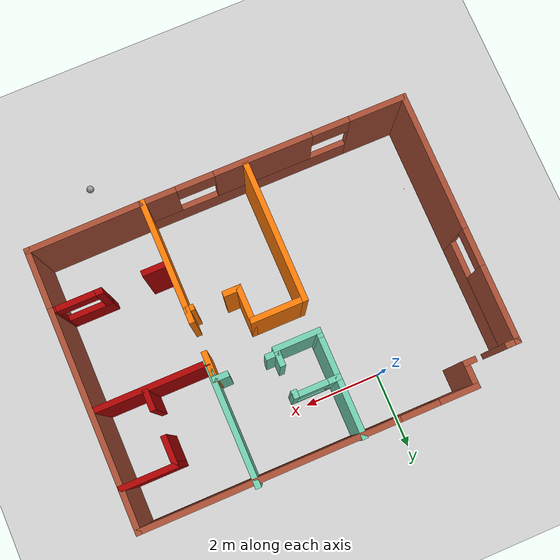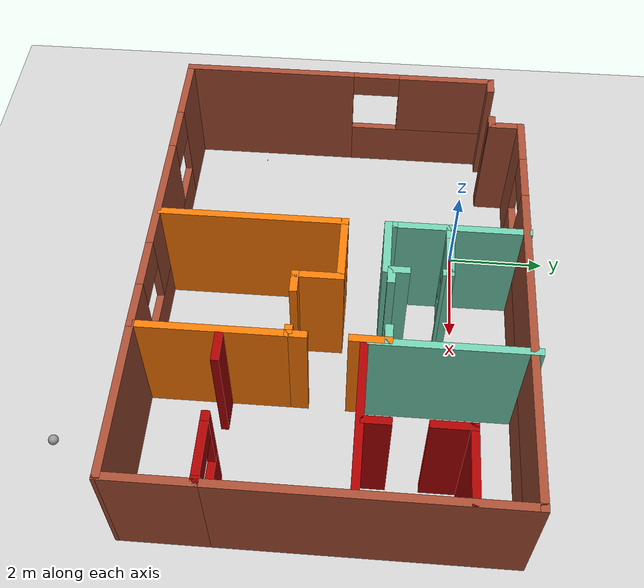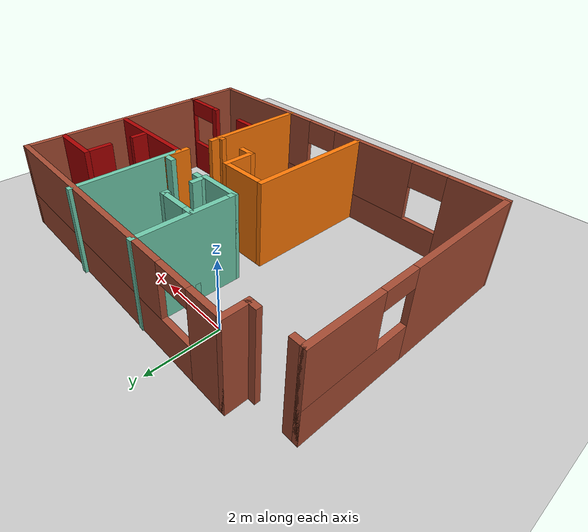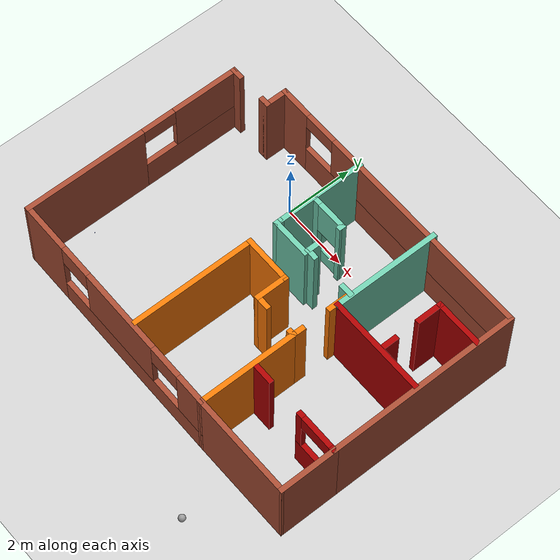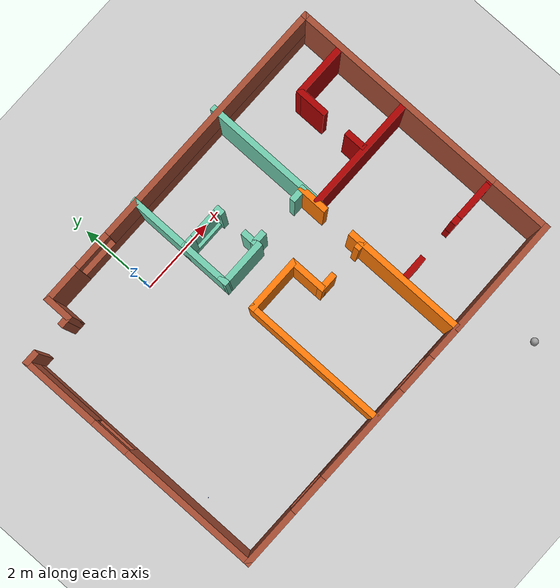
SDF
<sdf version="1.6">
 <world name="default">
  <plugin name="welcome_message" filename="libwelcome_message.so"/>
  <light name="sun" type="directional">
   <pose>0 0 10 0 -0 0</pose>
   <diffuse>0.8 0.8 0.8 1</diffuse>
   <specular>0.2 0.2 0.2 1</specular>
   <attenuation>
    <range>1000</range>
    <constant>0.9</constant>
    <linear>0.01</linear>
    <quadratic>0.001</quadratic>
   </attenuation>
   <direction>-0.5 0.1 -0.9</direction>
  </light>
  <model name="ground_plane">
   <static>1</static>
   <link name="link">
    <collision name="collision">
     <geometry><plane><normal>0 0 1</normal><size>100 100</size></plane></geometry>
     <surface><friction><ode><mu>100</mu><mu2>50</mu2></ode></friction></surface>
    </collision>
    <visual name="visual">
     <cast_shadows>0</cast_shadows>
     <geometry><plane><normal>0 0 1</normal><size>100 100</size></plane></geometry>
     <material>
      <script><uri>file://media/materials/scripts/gazebo.material</uri><name>Gazebo/Grey</name></script>
     </material>
    </visual>
   </link>
  </model>
  <gravity>0 0 -9.8</gravity>
  <magnetic_field>6e-06 2.3e-05 -4.2e-05</magnetic_field>
  <atmosphere type="adiabatic"/>
  <physics name="default_physics" default="0" type="ode">
   <max_step_size>0.001</max_step_size>
   <real_time_factor>1</real_time_factor>
   <real_time_update_rate>1000</real_time_update_rate>
  </physics>
  <scene><ambient>0.4 0.4 0.4 1</ambient><background>0.7 0.7 0.7 1</background><shadows>1</shadows></scene>
  <spherical_coordinates>
   <surface_model>EARTH_WGS84</surface_model>
   <latitude_deg>0</latitude_deg>
   <longitude_deg>0</longitude_deg>
   <elevation>0</elevation>
   <heading_deg>0</heading_deg>
  </spherical_coordinates>
  <model name="Building">
   <pose>1.9017 -2.33053 0 0 -0 0</pose>
   <link name="Wall_0">
    <pose>-4.30016 2.9635 0 0 -0 0</pose>
    <visual name="Wall_0_Visual_0">
     <pose>-0.550505 0 1.25 0 -0 0</pose>
     <geometry><box><size>0.39899 0.15 2.5</size></box></geometry>
     <material>
      <script><uri>file://media/materials/scripts/gazebo.material</uri><name>Gazebo/Bricks</name></script>
      <ambient>0.666667 0 0 1</ambient>
     </material>
     <meta><layer>0</layer></meta>
    </visual>
    <collision name="Wall_0_Collision_0">
     <geometry><box><size>0.39899 0.15 2.5</size></box></geometry>
     <pose>-0.550505 0 1.25 0 -0 0</pose>
    </collision>
    <visual name="Wall_0_Visual_1">
     <pose>0.581495 0 1.25 0 -0 0</pose>
     <geometry><box><size>0.33701 0.15 2.5</size></box></geometry>
     <material>
      <script><uri>file://media/materials/scripts/gazebo.material</uri><name>Gazebo/Bricks</name></script>
      <ambient>0.666667 0 0 1</ambient>
     </material>
     <meta><layer>0</layer></meta>
    </visual>
    <collision name="Wall_0_Collision_1">
     <geometry><box><size>0.33701 0.15 2.5</size></box></geometry>
     <pose>0.581495 0 1.25 0 -0 0</pose>
    </collision>
   </link>
   <link name="Wall_1">
    <collision name="Wall_1_Collision">
     <geometry><box><size>0.75 0.15 2.5</size></box></geometry>
     <pose>0 0 1.25 0 -0 0</pose>
    </collision>
    <visual name="Wall_1_Visual">
     <pose>0 0 1.25 0 -0 0</pose>
     <geometry><box><size>0.75 0.15 2.5</size></box></geometry>
     <material>
      <script><uri>file://media/materials/scripts/gazebo.material</uri><name>Gazebo/Bricks</name></script>
      <ambient>0.666667 0 0 1</ambient>
     </material>
     <meta><layer>0</layer></meta>
    </visual>
    <pose>-3.62515 3.2635 0 0 -0 1.5708</pose>
   </link>
   <link name="Wall_11">
    <pose>0.391864 1.53887 0 0 -0 1.5708</pose>
    <visual name="Wall_11_Visual_0">
     <pose>-0.412394 0 1.25 0 -0 0</pose>
     <geometry><box><size>0.425213 0.15 2.5</size></box></geometry>
     <material>
      <script><uri>file://media/materials/scripts/gazebo.material</uri><name>Gazebo/Grey</name></script>
      <ambient>0.435294 0.796078 0.67451 1</ambient>
     </material>
     <meta><layer>0</layer></meta>
    </visual>
    <collision name="Wall_11_Collision_0">
     <geometry><box><size>0.425213 0.15 2.5</size></box></geometry>
     <pose>-0.412394 0 1.25 0 -0 0</pose>
    </collision>
    <visual name="Wall_11_Visual_1">
     <pose>0.515606 0 1.25 0 -0 0</pose>
     <geometry><box><size>0.218787 0.15 2.5</size></box></geometry>
     <material>
      <script><uri>file://media/materials/scripts/gazebo.material</uri><name>Gazebo/Grey</name></script>
      <ambient>0.435294 0.796078 0.67451 1</ambient>
     </material>
     <meta><layer>0</layer></meta>
    </visual>
    <collision name="Wall_11_Collision_1">
     <geometry><box><size>0.218787 0.15 2.5</size></box></geometry>
     <pose>0.515606 0 1.25 0 -0 0</pose>
    </collision>
   </link>
   <link name="Wall_12">
    <pose>-0.158136 2.08887 0 0 -0 3.14159</pose>
    <visual name="Wall_12_Visual_0">
     <pose>-0.568138 0 1.25 0 -0 0</pose>
     <geometry><box><size>0.113724 0.15 2.5</size></box></geometry>
     <material>
      <script><uri>file://media/materials/scripts/gazebo.material</uri><name>Gazebo/Grey</name></script>
      <ambient>0.435294 0.796078 0.67451 1</ambient>
     </material>
     <meta><layer>0</layer></meta>
    </visual>
    <collision name="Wall_12_Collision_0">
     <geometry><box><size>0.113724 0.15 2.5</size></box></geometry>
     <pose>-0.568138 0 1.25 0 -0 0</pose>
    </collision>
    <visual name="Wall_12_Visual_1">
     <pose>0.056862 0 0.25 0 -0 0</pose>
     <geometry><box><size>1.13628 0.15 0.5</size></box></geometry>
     <material>
      <script><uri>file://media/materials/scripts/gazebo.material</uri><name>Gazebo/Grey</name></script>
      <ambient>0.435294 0.796078 0.67451 1</ambient>
     </material>
     <meta><layer>0</layer></meta>
    </visual>
    <collision name="Wall_12_Collision_1">
     <geometry><box><size>1.13628 0.15 0.5</size></box></geometry>
     <pose>0.056862 0 0.25 0 -0 0</pose>
    </collision>
    <visual name="Wall_12_Visual_2">
     <pose>0.456862 0 1.5 0 -0 0</pose>
     <geometry><box><size>0.336276 0.15 2</size></box></geometry>
     <material>
      <script><uri>file://media/materials/scripts/gazebo.material</uri><name>Gazebo/Grey</name></script>
      <ambient>0.435294 0.796078 0.67451 1</ambient>
     </material>
     <meta><layer>0</layer></meta>
    </visual>
    <collision name="Wall_12_Collision_2">
     <geometry><box><size>0.336276 0.15 2</size></box></geometry>
     <pose>0.456862 0 1.5 0 -0 0</pose>
    </collision>
    <visual name="Wall_12_Visual_3">
     <pose>-0.111276 0 1.9 0 -0 0</pose>
     <geometry><box><size>0.8 0.15 1.2</size></box></geometry>
     <material>
      <script><uri>file://media/materials/scripts/gazebo.material</uri><name>Gazebo/Grey</name></script>
      <ambient>0.435294 0.796078 0.67451 1</ambient>
     </material>
     <meta><layer>0</layer></meta>
    </visual>
    <collision name="Wall_12_Collision_3">
     <geometry><box><size>0.8 0.15 1.2</size></box></geometry>
     <pose>-0.111276 0 1.9 0 -0 0</pose>
    </collision>
   </link>
   <link name="Wall_16">
    <pose>1.19186 0.988869 0 0 -0 0</pose>
    <visual name="Wall_16_Visual_0">
     <pose>-0.680281 0 1.25 0 -0 0</pose>
     <geometry><box><size>0.389438 0.15 2.5</size></box></geometry>
     <material>
      <script><uri>file://media/materials/scripts/gazebo.material</uri><name>Gazebo/Grey</name></script>
      <ambient>0.435294 0.796078 0.67451 1</ambient>
     </material>
     <meta><layer>0</layer></meta>
    </visual>
    <collision name="Wall_16_Collision_0">
     <geometry><box><size>0.389438 0.15 2.5</size></box></geometry>
     <pose>-0.680281 0 1.25 0 -0 0</pose>
    </collision>
    <visual name="Wall_16_Visual_1">
     <pose>0.663744 0 1.25 0 -0 0</pose>
     <geometry><box><size>0.422512 0.15 2.5</size></box></geometry>
     <material>
      <script><uri>file://media/materials/scripts/gazebo.material</uri><name>Gazebo/Grey</name></script>
      <ambient>0.435294 0.796078 0.67451 1</ambient>
     </material>
     <meta><layer>0</layer></meta>
    </visual>
    <collision name="Wall_16_Collision_1">
     <geometry><box><size>0.422512 0.15 2.5</size></box></geometry>
     <pose>0.663744 0 1.25 0 -0 0</pose>
    </collision>
   </link>
   <link name="Wall_18">
    <collision name="Wall_18_Collision">
     <geometry><box><size>0.25 0.15 2.5</size></box></geometry>
     <pose>0 0 1.25 0 -0 0</pose>
    </collision>
    <visual name="Wall_18_Visual">
     <pose>0 0 1.25 0 -0 0</pose>
     <geometry><box><size>0.25 0.15 2.5</size></box></geometry>
     <material>
      <script><uri>file://media/materials/scripts/gazebo.material</uri><name>Gazebo/Grey</name></script>
      <ambient>0.435294 0.796078 0.67451 1</ambient>
     </material>
     <meta><layer>0</layer></meta>
    </visual>
    <pose>-0.708136 0.938869 0 0 0 -1.5708</pose>
   </link>
   <link name="Wall_19">
    <collision name="Wall_19_Collision">
     <geometry><box><size>1.25 0.15 2.5</size></box></geometry>
     <pose>0 0 1.25 0 -0 0</pose>
    </collision>
    <visual name="Wall_19_Visual">
     <pose>0 0 1.25 0 -0 0</pose>
     <geometry><box><size>1.25 0.15 2.5</size></box></geometry>
     <material>
      <script><uri>file://media/materials/scripts/gazebo.material</uri><name>Gazebo/Grey</name></script>
      <ambient>0.435294 0.796078 0.67451 1</ambient>
     </material>
     <meta><layer>0</layer></meta>
    </visual>
    <pose>-0.158136 0.888869 0 0 -0 0</pose>
   </link>
   <link name="Wall_2">
    <pose>0.674845 3.5635 0 0 -0 0</pose>
    <visual name="Wall_2_Visual_0">
     <pose>-3.86007 0 1.25 0 -0 0</pose>
     <geometry><box><size>1.02985 0.15 2.5</size></box></geometry>
     <material>
      <script><uri>file://media/materials/scripts/gazebo.material</uri><name>Gazebo/Bricks</name></script>
      <ambient>0.666667 0 0 1</ambient>
     </material>
     <meta><layer>0</layer></meta>
    </visual>
    <collision name="Wall_2_Collision_0">
     <geometry><box><size>1.02985 0.15 2.5</size></box></geometry>
     <pose>-3.86007 0 1.25 0 -0 0</pose>
    </collision>
    <visual name="Wall_2_Visual_1">
     <pose>0.514926 0 0.5 0 -0 0</pose>
     <geometry><box><size>7.72015 0.15 1</size></box></geometry>
     <material>
      <script><uri>file://media/materials/scripts/gazebo.material</uri><name>Gazebo/Bricks</name></script>
      <ambient>0.666667 0 0 1</ambient>
     </material>
     <meta><layer>0</layer></meta>
    </visual>
    <collision name="Wall_2_Collision_1">
     <geometry><box><size>7.72015 0.15 1</size></box></geometry>
     <pose>0.514926 0 0.5 0 -0 0</pose>
    </collision>
    <visual name="Wall_2_Visual_2">
     <pose>1.01493 0 1.75 0 -0 0</pose>
     <geometry><box><size>6.72015 0.15 1.5</size></box></geometry>
     <material>
      <script><uri>file://media/materials/scripts/gazebo.material</uri><name>Gazebo/Bricks</name></script>
      <ambient>0.666667 0 0 1</ambient>
     </material>
     <meta><layer>0</layer></meta>
    </visual>
    <collision name="Wall_2_Collision_2">
     <geometry><box><size>6.72015 0.15 1.5</size></box></geometry>
     <pose>1.01493 0 1.75 0 -0 0</pose>
    </collision>
    <visual name="Wall_2_Visual_3">
     <pose>-2.84515 0 2.25 0 -0 0</pose>
     <geometry><box><size>1 0.15 0.5</size></box></geometry>
     <material>
      <script><uri>file://media/materials/scripts/gazebo.material</uri><name>Gazebo/Bricks</name></script>
      <ambient>0.666667 0 0 1</ambient>
     </material>
     <meta><layer>0</layer></meta>
    </visual>
    <collision name="Wall_2_Collision_3">
     <geometry><box><size>1 0.15 0.5</size></box></geometry>
     <pose>-2.84515 0 2.25 0 -0 0</pose>
    </collision>
   </link>
   <link name="Wall_3">
    <collision name="Wall_3_Collision">
     <geometry><box><size>5.75 0.15 2.5</size></box></geometry>
     <pose>0 0 1.25 0 -0 0</pose>
    </collision>
    <visual name="Wall_3_Visual">
     <pose>0 0 1.25 0 -0 0</pose>
     <geometry><box><size>5.75 0.15 2.5</size></box></geometry>
     <material>
      <script><uri>file://media/materials/scripts/gazebo.material</uri><name>Gazebo/Bricks</name></script>
      <ambient>0.666667 0 0 1</ambient>
     </material>
     <meta><layer>0</layer></meta>
    </visual>
    <pose>4.97485 0.7635 0 0 0 -1.5708</pose>
   </link>
   <link name="Wall_37">
    <collision name="Wall_37_Collision">
     <geometry><box><size>3.25 0.15 2.5</size></box></geometry>
     <pose>0 0 1.25 0 -0 0</pose>
    </collision>
    <visual name="Wall_37_Visual">
     <pose>0 0 1.25 0 -0 0</pose>
     <geometry><box><size>3.25 0.15 2.5</size></box></geometry>
     <material>
      <script><uri>file://media/materials/scripts/gazebo.material</uri><name>Gazebo/Grey</name></script>
      <ambient>0.435294 0.796078 0.67451 1</ambient>
     </material>
     <meta><layer>0</layer></meta>
    </visual>
    <pose>2.03032 2.10888 0 0 0 -1.5708</pose>
   </link>
   <link name="Wall_39">
    <collision name="Wall_39_Collision">
     <geometry><box><size>3.75 0.15 2.5</size></box></geometry>
     <pose>0 0 1.25 0 -0 0</pose>
    </collision>
    <visual name="Wall_39_Visual">
     <pose>0 0 1.25 0 -0 0</pose>
     <geometry><box><size>3.75 0.15 2.5</size></box></geometry>
     <material>
      <script><uri>file://media/materials/scripts/gazebo.material</uri><name>Gazebo/Grey</name></script>
      <ambient>0.996078 0.47451 0.0196078 1</ambient>
     </material>
     <meta><layer>0</layer></meta>
    </visual>
    <pose>-0.719298 -1.75833 0 0 -0 1.5708</pose>
   </link>
   <link name="Wall_4">
    <pose>3.54984 -2.0365 0 0 -0 3.14159</pose>
    <visual name="Wall_4_Visual_0">
     <pose>-1.40037 0 1.25 0 -0 0</pose>
     <geometry><box><size>0.199251 0.15 2.5</size></box></geometry>
     <material>
      <script><uri>file://media/materials/scripts/gazebo.material</uri><name>Gazebo/Grey</name></script>
      <ambient>0.666667 0 0 1</ambient>
     </material>
     <meta><layer>0</layer></meta>
    </visual>
    <collision name="Wall_4_Collision_0">
     <geometry><box><size>0.199251 0.15 2.5</size></box></geometry>
     <pose>-1.40037 0 1.25 0 -0 0</pose>
    </collision>
    <visual name="Wall_4_Visual_1">
     <pose>1.1996 0 1.25 0 -0 0</pose>
     <geometry><box><size>0.600792 0.15 2.5</size></box></geometry>
     <material>
      <script><uri>file://media/materials/scripts/gazebo.material</uri><name>Gazebo/Grey</name></script>
      <ambient>0.666667 0 0 1</ambient>
     </material>
     <meta><layer>0</layer></meta>
    </visual>
    <collision name="Wall_4_Collision_1">
     <geometry><box><size>0.600792 0.15 2.5</size></box></geometry>
     <pose>1.1996 0 1.25 0 -0 0</pose>
    </collision>
    <visual name="Wall_4_Visual_2">
     <pose>-0.70027 0 0.5 0 -0 0</pose>
     <geometry><box><size>1.20096 0.15 1</size></box></geometry>
     <material>
      <script><uri>file://media/materials/scripts/gazebo.material</uri><name>Gazebo/Grey</name></script>
      <ambient>0.666667 0 0 1</ambient>
     </material>
     <meta><layer>0</layer></meta>
    </visual>
    <collision name="Wall_4_Collision_2">
     <geometry><box><size>1.20096 0.15 1</size></box></geometry>
     <pose>-0.70027 0 0.5 0 -0 0</pose>
    </collision>
    <visual name="Wall_4_Visual_3">
     <pose>-0.20027 0 1.75 0 -0 0</pose>
     <geometry><box><size>0.200957 0.15 1.5</size></box></geometry>
     <material>
      <script><uri>file://media/materials/scripts/gazebo.material</uri><name>Gazebo/Grey</name></script>
      <ambient>0.666667 0 0 1</ambient>
     </material>
     <meta><layer>0</layer></meta>
    </visual>
    <collision name="Wall_4_Collision_3">
     <geometry><box><size>0.200957 0.15 1.5</size></box></geometry>
     <pose>-0.20027 0 1.75 0 -0 0</pose>
    </collision>
    <visual name="Wall_4_Visual_4">
     <pose>-0.800749 0 2.25 0 -0 0</pose>
     <geometry><box><size>1 0.15 0.5</size></box></geometry>
     <material>
      <script><uri>file://media/materials/scripts/gazebo.material</uri><name>Gazebo/Grey</name></script>
      <ambient>0.666667 0 0 1</ambient>
     </material>
     <meta><layer>0</layer></meta>
    </visual>
    <collision name="Wall_4_Collision_4">
     <geometry><box><size>1 0.15 0.5</size></box></geometry>
     <pose>-0.800749 0 2.25 0 -0 0</pose>
    </collision>
   </link>
   <link name="Wall_50">
    <collision name="Wall_50_Collision">
     <geometry><box><size>1.5 0.15 2.5</size></box></geometry>
     <pose>0 0 1.25 0 -0 0</pose>
    </collision>
    <visual name="Wall_50_Visual">
     <pose>0 0 1.25 0 -0 0</pose>
     <geometry><box><size>1.5 0.15 2.5</size></box></geometry>
     <material>
      <script><uri>file://media/materials/scripts/gazebo.material</uri><name>Gazebo/Grey</name></script>
      <ambient>0.996078 0.47451 0.0196078 1</ambient>
     </material>
     <meta><layer>0</layer></meta>
    </visual>
    <pose>-0.044298 0.041665 0 0 -0 0</pose>
   </link>
   <link name="Wall_51">
    <collision name="Wall_51_Collision">
     <geometry><box><size>1 0.15 2.5</size></box></geometry>
     <pose>0 0 1.25 0 -0 0</pose>
    </collision>
    <visual name="Wall_51_Visual">
     <pose>0 0 1.25 0 -0 0</pose>
     <geometry><box><size>1 0.15 2.5</size></box></geometry>
     <material>
      <script><uri>file://media/materials/scripts/gazebo.material</uri><name>Gazebo/Grey</name></script>
      <ambient>0.996078 0.47451 0.0196078 1</ambient>
     </material>
     <meta><layer>0</layer></meta>
    </visual>
    <pose>0.630702 -0.383335 0 0 0 -1.5708</pose>
   </link>
   <link name="Wall_52">
    <pose>1.3057 -0.808335 0 0 -0 0</pose>
    <visual name="Wall_52_Visual_0">
     <pose>-0.504705 0 1.25 0 -0 0</pose>
     <geometry><box><size>0.490591 0.15 2.5</size></box></geometry>
     <material>
      <script><uri>file://media/materials/scripts/gazebo.material</uri><name>Gazebo/Grey</name></script>
      <ambient>0.996078 0.47451 0.0196078 1</ambient>
     </material>
     <meta><layer>0</layer></meta>
    </visual>
    <collision name="Wall_52_Collision_0">
     <geometry><box><size>0.490591 0.15 2.5</size></box></geometry>
     <pose>-0.504705 0 1.25 0 -0 0</pose>
    </collision>
    <visual name="Wall_52_Visual_1">
     <pose>0.617295 0 1.25 0 -0 0</pose>
     <geometry><box><size>0.265409 0.15 2.5</size></box></geometry>
     <material>
      <script><uri>file://media/materials/scripts/gazebo.material</uri><name>Gazebo/Grey</name></script>
      <ambient>0.996078 0.47451 0.0196078 1</ambient>
     </material>
     <meta><layer>0</layer></meta>
    </visual>
    <collision name="Wall_52_Collision_1">
     <geometry><box><size>0.265409 0.15 2.5</size></box></geometry>
     <pose>0.617295 0 1.25 0 -0 0</pose>
    </collision>
   </link>
   <link name="Wall_54">
    <collision name="Wall_54_Collision">
     <geometry><box><size>3 0.15 2.5</size></box></geometry>
     <pose>0 0 1.25 0 -0 0</pose>
    </collision>
    <visual name="Wall_54_Visual">
     <pose>0 0 1.25 0 -0 0</pose>
     <geometry><box><size>3 0.15 2.5</size></box></geometry>
     <material>
      <script><uri>file://media/materials/scripts/gazebo.material</uri><name>Gazebo/Grey</name></script>
      <ambient>0.996078 0.47451 0.0196078 1</ambient>
     </material>
     <meta><layer>0</layer></meta>
    </visual>
    <pose>1.9807 -2.23333 0 0 0 -1.5708</pose>
   </link>
   <link name="Wall_56">
    <pose>-1.49723 -3.64742 0 0 0 -0.003139</pose>
    <visual name="Wall_56_Visual_0">
     <pose>-2.77726 0 1.25 0 -0 0</pose>
     <geometry><box><size>1.55137 0.15 2.5</size></box></geometry>
     <material>
      <script><uri>file://media/materials/scripts/gazebo.material</uri><name>Gazebo/Bricks</name></script>
      <ambient>0.666667 0 0 1</ambient>
     </material>
     <meta><layer>0</layer></meta>
    </visual>
    <collision name="Wall_56_Collision_0">
     <geometry><box><size>1.55137 0.15 2.5</size></box></geometry>
     <pose>-2.77726 0 1.25 0 -0 0</pose>
    </collision>
    <visual name="Wall_56_Visual_1">
     <pose>0.775684 0 0.4 0 -0 0</pose>
     <geometry><box><size>5.55452 0.15 0.8</size></box></geometry>
     <material>
      <script><uri>file://media/materials/scripts/gazebo.material</uri><name>Gazebo/Bricks</name></script>
      <ambient>0.666667 0 0 1</ambient>
     </material>
     <meta><layer>0</layer></meta>
    </visual>
    <collision name="Wall_56_Collision_1">
     <geometry><box><size>5.55452 0.15 0.8</size></box></geometry>
     <pose>0.775684 0 0.4 0 -0 0</pose>
    </collision>
    <visual name="Wall_56_Visual_2">
     <pose>0.299823 0 1.65 0 -0 0</pose>
     <geometry><box><size>2.6028 0.15 1.7</size></box></geometry>
     <material>
      <script><uri>file://media/materials/scripts/gazebo.material</uri><name>Gazebo/Bricks</name></script>
      <ambient>0.666667 0 0 1</ambient>
     </material>
     <meta><layer>0</layer></meta>
    </visual>
    <collision name="Wall_56_Collision_2">
     <geometry><box><size>2.6028 0.15 1.7</size></box></geometry>
     <pose>0.299823 0 1.65 0 -0 0</pose>
    </collision>
    <visual name="Wall_56_Visual_3">
     <pose>3.07708 0 1.65 0 -0 0</pose>
     <geometry><box><size>0.951723 0.15 1.7</size></box></geometry>
     <material>
      <script><uri>file://media/materials/scripts/gazebo.material</uri><name>Gazebo/Bricks</name></script>
      <ambient>0.666667 0 0 1</ambient>
     </material>
     <meta><layer>0</layer></meta>
    </visual>
    <collision name="Wall_56_Collision_3">
     <geometry><box><size>0.951723 0.15 1.7</size></box></geometry>
     <pose>3.07708 0 1.65 0 -0 0</pose>
    </collision>
    <visual name="Wall_56_Visual_4">
     <pose>-1.50158 0 2.15 0 -0 0</pose>
     <geometry><box><size>1 0.15 0.7</size></box></geometry>
     <material>
      <script><uri>file://media/materials/scripts/gazebo.material</uri><name>Gazebo/Bricks</name></script>
      <ambient>0.666667 0 0 1</ambient>
     </material>
     <meta><layer>0</layer></meta>
    </visual>
    <collision name="Wall_56_Collision_4">
     <geometry><box><size>1 0.15 0.7</size></box></geometry>
     <pose>-1.50158 0 2.15 0 -0 0</pose>
    </collision>
    <visual name="Wall_56_Visual_5">
     <pose>2.10122 0 2.15 0 -0 0</pose>
     <geometry><box><size>1 0.15 0.7</size></box></geometry>
     <material>
      <script><uri>file://media/materials/scripts/gazebo.material</uri><name>Gazebo/Bricks</name></script>
      <ambient>0.666667 0 0 1</ambient>
     </material>
     <meta><layer>0</layer></meta>
    </visual>
    <collision name="Wall_56_Collision_5">
     <geometry><box><size>1 0.15 0.7</size></box></geometry>
     <pose>2.10122 0 2.15 0 -0 0</pose>
    </collision>
   </link>
   <link name="Wall_58">
    <pose>1.98628 0.090267 0 0 -0 1.56458</pose>
    <visual name="Wall_58_Visual_0">
     <pose>-0.761715 0 1.25 0 -0 0</pose>
     <geometry><box><size>0.423808 0.15 2.5</size></box></geometry>
     <material>
      <script><uri>file://media/materials/scripts/gazebo.material</uri><name>Gazebo/Grey</name></script>
      <ambient>0.996078 0.47451 0.0196078 1</ambient>
     </material>
     <meta><layer>0</layer></meta>
    </visual>
    <collision name="Wall_58_Collision_0">
     <geometry><box><size>0.423808 0.15 2.5</size></box></geometry>
     <pose>-0.761715 0 1.25 0 -0 0</pose>
    </collision>
    <visual name="Wall_58_Visual_1">
     <pose>0.577384 0 1.25 0 -0 0</pose>
     <geometry><box><size>0.792471 0.15 2.5</size></box></geometry>
     <material>
      <script><uri>file://media/materials/scripts/gazebo.material</uri><name>Gazebo/Grey</name></script>
      <ambient>0.996078 0.47451 0.0196078 1</ambient>
     </material>
     <meta><layer>0</layer></meta>
    </visual>
    <collision name="Wall_58_Collision_1">
     <geometry><box><size>0.792471 0.15 2.5</size></box></geometry>
     <pose>0.577384 0 1.25 0 -0 0</pose>
    </collision>
   </link>
   <link name="Wall_60">
    <collision name="Wall_60_Collision">
     <geometry><box><size>1.75 0.15 2.5</size></box></geometry>
     <pose>0 0 1.25 0 -0 0</pose>
    </collision>
    <visual name="Wall_60_Visual">
     <pose>0 0 1.25 0 -0 0</pose>
     <geometry><box><size>1.75 0.15 2.5</size></box></geometry>
     <material>
      <script><uri>file://media/materials/scripts/gazebo.material</uri><name>Gazebo/Bricks</name></script>
      <ambient>0.666667 0 0 1</ambient>
     </material>
     <meta><layer>0</layer></meta>
    </visual>
    <pose>4.97485 -2.8365 0 0 0 -1.5708</pose>
   </link>
   <link name="Wall_61">
    <collision name="Wall_61_Collision">
     <geometry><box><size>3.14422 0.15 2.5</size></box></geometry>
     <pose>0 0 1.25 0 -0 0</pose>
    </collision>
    <visual name="Wall_61_Visual">
     <pose>0 0 1.25 0 -0 0</pose>
     <geometry><box><size>3.14422 0.15 2.5</size></box></geometry>
     <material>
      <script><uri>file://media/materials/scripts/gazebo.material</uri><name>Gazebo/Bricks</name></script>
      <ambient>0.666667 0 0 1</ambient>
     </material>
     <meta><layer>0</layer></meta>
    </visual>
    <pose>3.47777 -3.64742 0 0 0 -3.1343</pose>
   </link>
   <link name="Wall_63">
    <collision name="Wall_63_Collision">
     <geometry><box><size>1.5 0.15 2.5</size></box></geometry>
     <pose>0 0 1.25 0 -0 0</pose>
    </collision>
    <visual name="Wall_63_Visual">
     <pose>0 0 1.25 0 -0 0</pose>
     <geometry><box><size>1.5 0.15 2.5</size></box></geometry>
     <material>
      <script><uri>file://media/materials/scripts/gazebo.material</uri><name>Gazebo/Grey</name></script>
      <ambient>0.666667 0 0 1</ambient>
     </material>
     <meta><layer>0</layer></meta>
    </visual>
    <pose>4.28835 2.48996 0 0 -0 3.14159</pose>
   </link>
   <link name="Wall_64">
    <pose>3.61335 1.56496 0 0 0 -1.5708</pose>
    <visual name="Wall_64_Visual_0">
     <pose>-0.582062 0 1.25 0 -0 0</pose>
     <geometry><box><size>0.835877 0.15 2.5</size></box></geometry>
     <material>
      <script><uri>file://media/materials/scripts/gazebo.material</uri><name>Gazebo/Grey</name></script>
      <ambient>0.666667 0 0 1</ambient>
     </material>
     <meta><layer>0</layer></meta>
    </visual>
    <collision name="Wall_64_Collision_0">
     <geometry><box><size>0.835877 0.15 2.5</size></box></geometry>
     <pose>-0.582062 0 1.25 0 -0 0</pose>
    </collision>
    <visual name="Wall_64_Visual_1">
     <pose>0.727938 0 1.25 0 -0 0</pose>
     <geometry><box><size>0.544123 0.15 2.5</size></box></geometry>
     <material>
      <script><uri>file://media/materials/scripts/gazebo.material</uri><name>Gazebo/Grey</name></script>
      <ambient>0.666667 0 0 1</ambient>
     </material>
     <meta><layer>0</layer></meta>
    </visual>
    <collision name="Wall_64_Collision_1">
     <geometry><box><size>0.544123 0.15 2.5</size></box></geometry>
     <pose>0.727938 0 1.25 0 -0 0</pose>
    </collision>
   </link>
   <link name="Wall_66">
    <collision name="Wall_66_Collision">
     <geometry><box><size>3 0.15 2.5</size></box></geometry>
     <pose>0 0 1.25 0 -0 0</pose>
    </collision>
    <visual name="Wall_66_Visual">
     <pose>0 0 1.25 0 -0 0</pose>
     <geometry><box><size>3 0.15 2.5</size></box></geometry>
     <material>
      <script><uri>file://media/materials/scripts/gazebo.material</uri><name>Gazebo/Grey</name></script>
      <ambient>0.666667 0 0 1</ambient>
     </material>
     <meta><layer>0</layer></meta>
    </visual>
    <pose>3.45533 0.55888 0 0 -0 0</pose>
   </link>
   <link name="Wall_7">
    <pose>-4.97515 -0.3365 0 0 -0 1.5708</pose>
    <visual name="Wall_7_Visual_0">
     <pose>-1.53025 0 1.25 0 -0 0</pose>
     <geometry><box><size>3.6895 0.15 2.5</size></box></geometry>
     <material>
      <script><uri>file://media/materials/scripts/gazebo.material</uri><name>Gazebo/Bricks</name></script>
      <ambient>0.666667 0 0 1</ambient>
     </material>
     <meta><layer>0</layer></meta>
    </visual>
    <collision name="Wall_7_Collision_0">
     <geometry><box><size>3.6895 0.15 2.5</size></box></geometry>
     <pose>-1.53025 0 1.25 0 -0 0</pose>
    </collision>
    <visual name="Wall_7_Visual_1">
     <pose>1.84475 0 0.5 0 -0 0</pose>
     <geometry><box><size>3.0605 0.15 1</size></box></geometry>
     <material>
      <script><uri>file://media/materials/scripts/gazebo.material</uri><name>Gazebo/Bricks</name></script>
      <ambient>0.666667 0 0 1</ambient>
     </material>
     <meta><layer>0</layer></meta>
    </visual>
    <collision name="Wall_7_Collision_1">
     <geometry><box><size>3.0605 0.15 1</size></box></geometry>
     <pose>1.84475 0 0.5 0 -0 0</pose>
    </collision>
    <visual name="Wall_7_Visual_2">
     <pose>2.34475 0 1.75 0 -0 0</pose>
     <geometry><box><size>2.0605 0.15 1.5</size></box></geometry>
     <material>
      <script><uri>file://media/materials/scripts/gazebo.material</uri><name>Gazebo/Bricks</name></script>
      <ambient>0.666667 0 0 1</ambient>
     </material>
     <meta><layer>0</layer></meta>
    </visual>
    <collision name="Wall_7_Collision_2">
     <geometry><box><size>2.0605 0.15 1.5</size></box></geometry>
     <pose>2.34475 0 1.75 0 -0 0</pose>
    </collision>
    <visual name="Wall_7_Visual_3">
     <pose>0.814501 0 2.25 0 -0 0</pose>
     <geometry><box><size>1 0.15 0.5</size></box></geometry>
     <material>
      <script><uri>file://media/materials/scripts/gazebo.material</uri><name>Gazebo/Bricks</name></script>
      <ambient>0.666667 0 0 1</ambient>
     </material>
     <meta><layer>0</layer></meta>
    </visual>
    <collision name="Wall_7_Collision_3">
     <geometry><box><size>1 0.15 0.5</size></box></geometry>
     <pose>0.814501 0 2.25 0 -0 0</pose>
    </collision>
   </link>
   <link name="Wall_9">
    <collision name="Wall_9_Collision">
     <geometry><box><size>2.75 0.15 2.5</size></box></geometry>
     <pose>0 0 1.25 0 -0 0</pose>
    </collision>
    <visual name="Wall_9_Visual">
     <pose>0 0 1.25 0 -0 0</pose>
     <geometry><box><size>2.75 0.15 2.5</size></box></geometry>
     <material>
      <script><uri>file://media/materials/scripts/gazebo.material</uri><name>Gazebo/Grey</name></script>
      <ambient>0.435294 0.796078 0.67451 1</ambient>
     </material>
     <meta><layer>0</layer></meta>
    </visual>
    <pose>-0.708136 2.28887 0 0 0 -1.5708</pose>
   </link>
   <static>1</static>
  </model>
  <model name="marble_1_5cm">
   <link name="link">
    <pose>0 0 0.0075 0 -0 0</pose>
    <inertial>
     <mass>0.0062</mass>
     <inertia>
      <ixx>1.395e-07</ixx>
      <ixy>0</ixy>
      <ixz>0</ixz>
      <iyy>1.395e-07</iyy>
      <iyz>0</iyz>
      <izz>1.395e-07</izz>
     </inertia>
    </inertial>
    <collision name="collision">
     <geometry><sphere><radius>0.0075</radius></sphere></geometry>
     <surface>
      <contact>
       <poissons_ratio>0.22</poissons_ratio>
       <elastic_modulus>5.1e+10</elastic_modulus>
       <ode><kp>100000</kp><kd>100</kd><max_vel>100</max_vel><min_depth>0.001</min_depth></ode>
      </contact>
      <friction>
       <torsional>
        <coefficient>1</coefficient>
        <use_patch_radius>0</use_patch_radius>
        <surface_radius>0.01</surface_radius>
       </torsional>
      </friction>
     </surface>
    </collision>
    <visual name="visual">
     <geometry><sphere><radius>0.0075</radius></sphere></geometry>
     <material>
      <script><uri>file://media/materials/scripts/gazebo.material</uri><name>Gazebo/Blue</name></script>
     </material>
    </visual>
    <velocity_decay><linear>0</linear><angular>0.005</angular></velocity_decay>
   </link>
   <pose>-2.74147 -4.33994 -0.001001 0 -0 0</pose>
  </model>
  <model name="my_ball">
   <link name="link_0">
    <inertial>
     <mass>1</mass>
     <inertia><ixx>0.1</ixx><ixy>0</ixy><ixz>0</ixz><iyy>0.1</iyy><iyz>0</iyz><izz>0.1</izz></inertia>
    </inertial>
    <visual name="visual">
     <geometry><sphere><radius>0.1</radius></sphere></geometry>
     <material>
      <lighting>1</lighting>
      <script><uri>file://media/materials/scripts/gazebo.material</uri><name>Gazebo/Grey</name></script>
      <ambient>1 1 1 1</ambient>
      <diffuse>1 1 1 1</diffuse>
      <specular>1 1 1 1</specular>
      <emissive>1 1 1 1</emissive>
      <shader type="vertex"><normal_map>__default__</normal_map></shader>
     </material>
    </visual>
    <collision name="collision">
     <geometry><sphere><radius>0.1</radius></sphere></geometry>
     <surface>
      <friction>
       <ode><mu>1</mu><mu2>1</mu2><fdir1>0 0 0</fdir1><slip1>0</slip1><slip2>0</slip2></ode>
       <torsional>
        <coefficient>1</coefficient>
        <patch_radius>0</patch_radius>
        <surface_radius>0</surface_radius>
        <use_patch_radius>1</use_patch_radius>
        <ode><slip>0</slip></ode>
       </torsional>
      </friction>
      <bounce><restitution_coefficient>0</restitution_coefficient><threshold>1e+06</threshold></bounce>
      <contact>
       <collide_without_contact>0</collide_without_contact>
       <collide_without_contact_bitmask>1</collide_without_contact_bitmask>
       <collide_bitmask>1</collide_bitmask>
       <ode>
        <soft_cfm>0</soft_cfm>
        <soft_erp>0.2</soft_erp>
        <kp>1e+13</kp>
        <kd>1</kd>
        <max_vel>0.01</max_vel>
        <min_depth>0</min_depth>
       </ode>
       <bullet>
        <split_impulse>1</split_impulse>
        <split_impulse_penetration_threshold>-0.01</split_impulse_penetration_threshold>
        <soft_cfm>0</soft_cfm>
        <soft_erp>0.2</soft_erp>
        <kp>1e+13</kp>
        <kd>1</kd>
       </bullet>
      </contact>
     </surface>
    </collision>
   </link>
   <static>0</static>
   <pose>5.08747 -7.62213 0.1 0 -0 0</pose>
  </model>
 </world>
</sdf>
